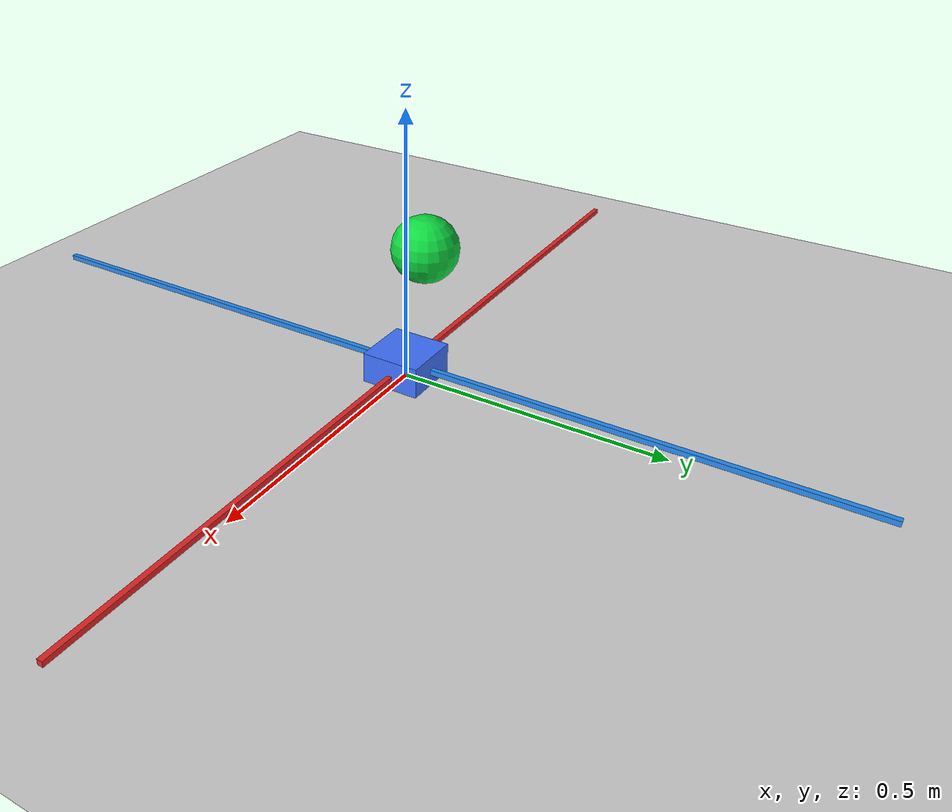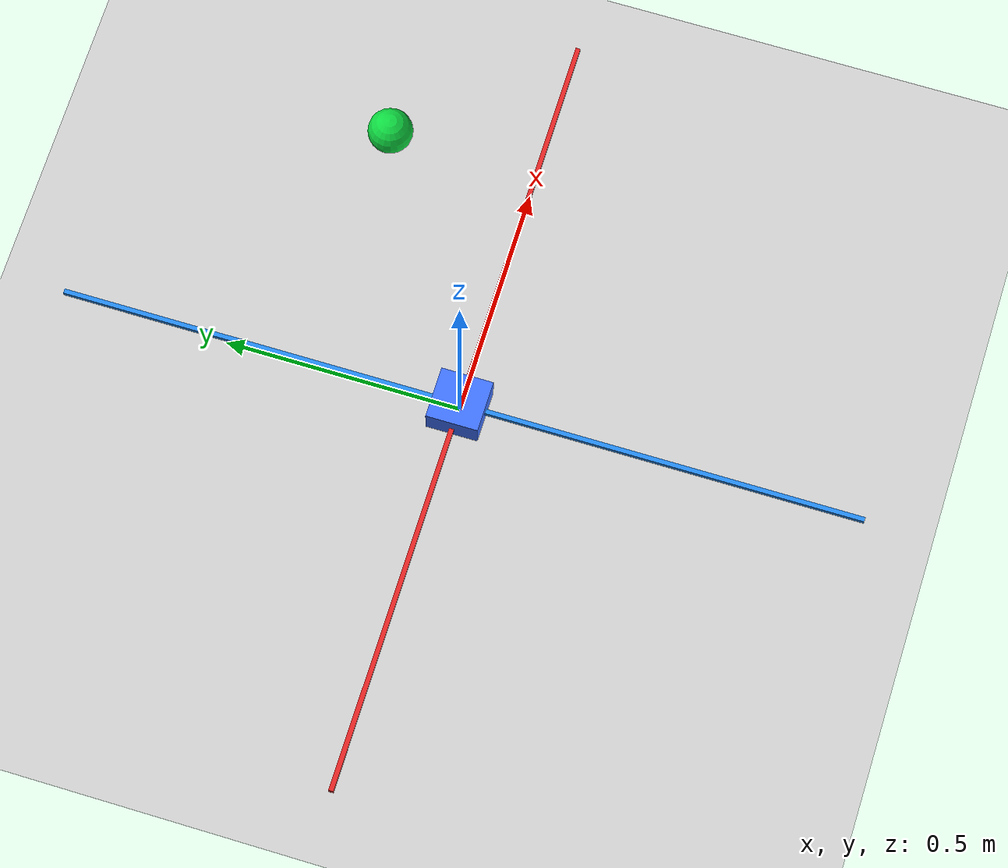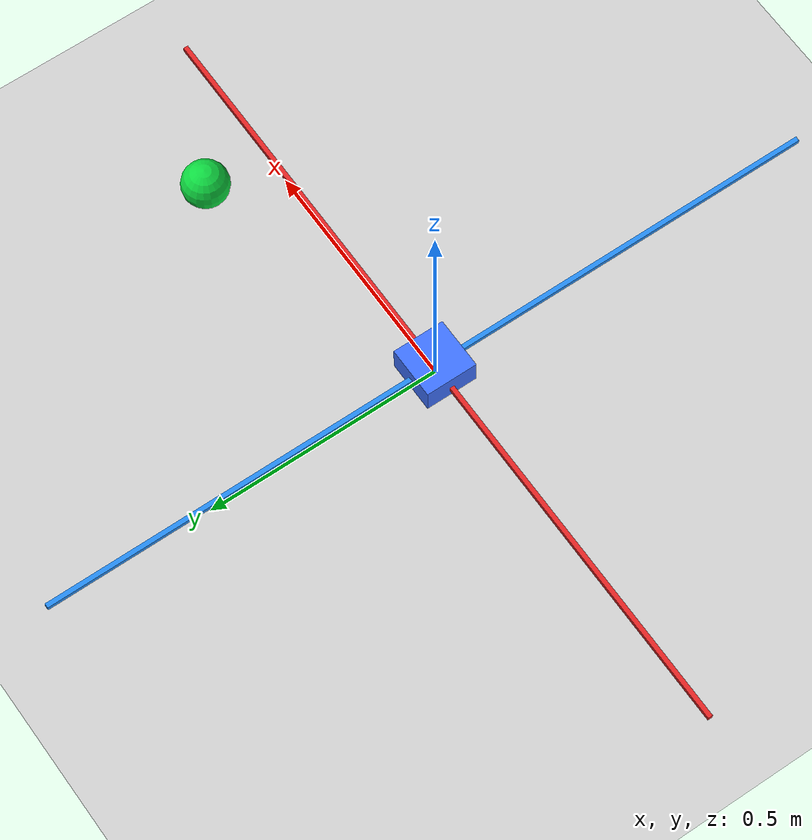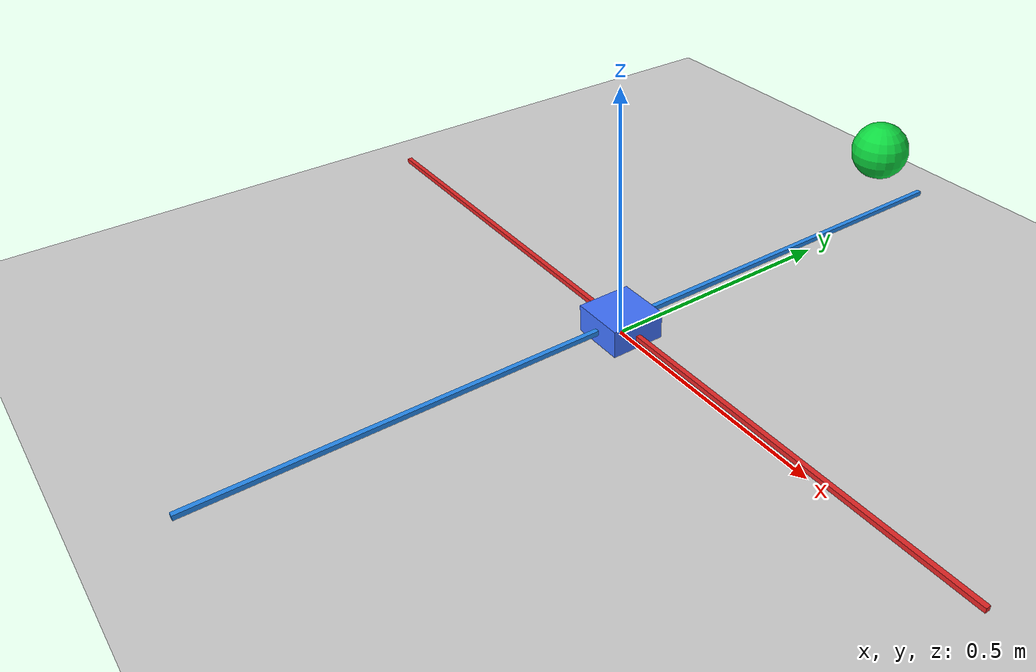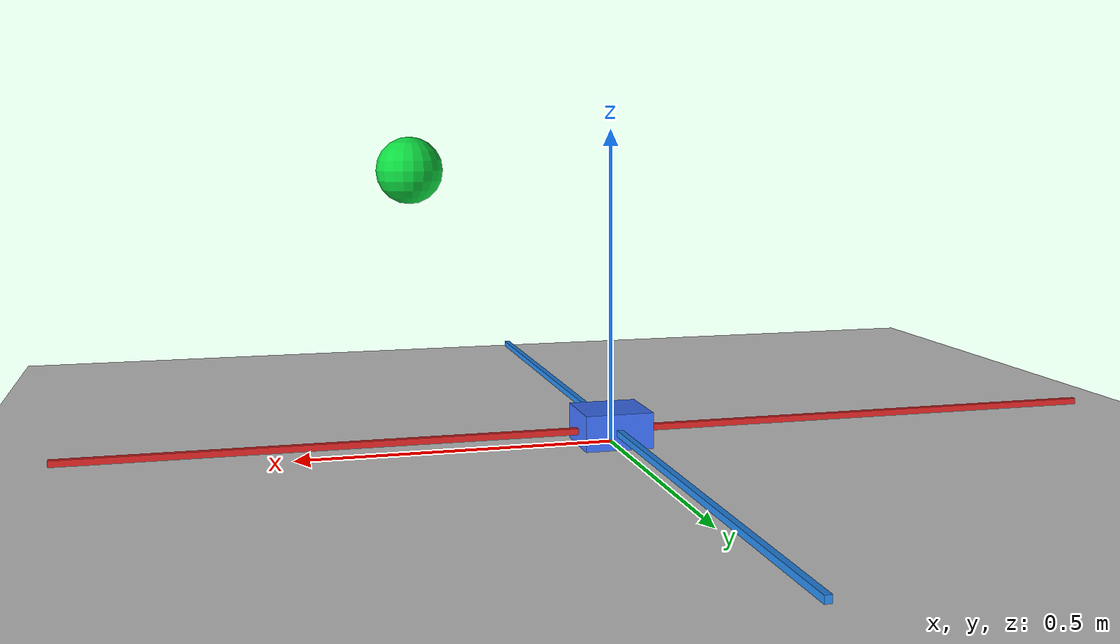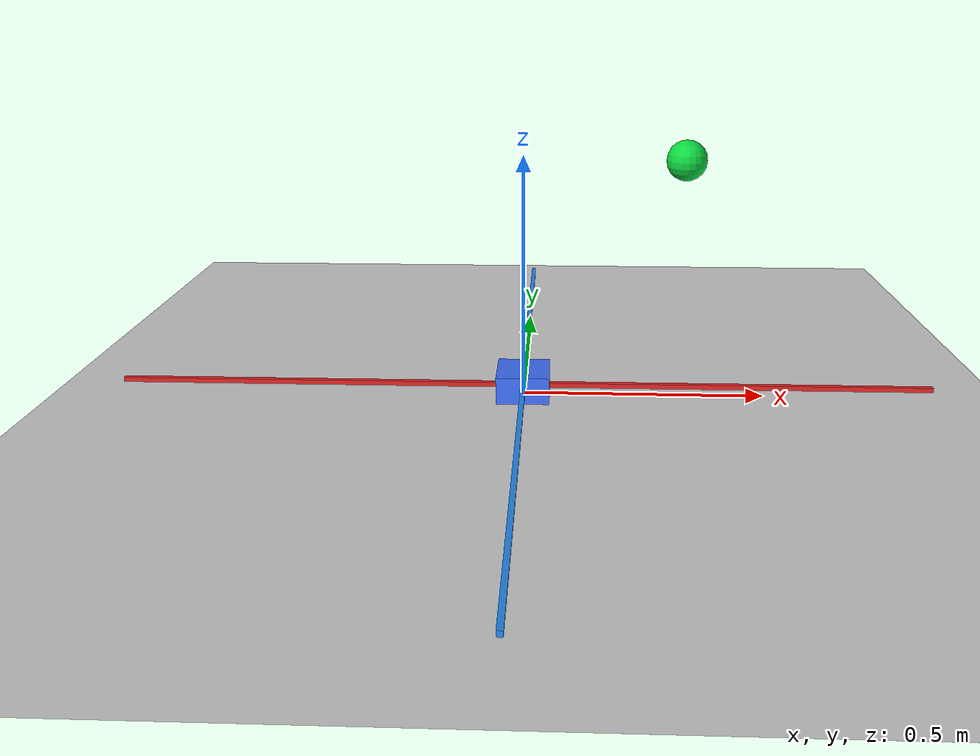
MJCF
<mujoco model="block_reach_3d">
  <compiler angle="degree"/>

  <option timestep="0.002" gravity="0 0 0"/>

  <default>
    <joint damping="0.08"/>
    <geom friction="1 0.005 0.0001"/>
  </default>

  <worldbody>
    <light pos="0 0 3" dir="0 0 -1"/>

    <geom
      name="ground"
      type="plane"
      size="1.4 1.4 0.1"
      rgba="0.82 0.82 0.82 1"/>

    <geom
      name="x_axis"
      type="box"
      pos="0 0 0.02"
      size="0.85 0.005 0.005"
      rgba="0.9 0.15 0.15 1"
      contype="0"
      conaffinity="0"/>

    <geom
      name="y_axis"
      type="box"
      pos="0 0 0.025"
      size="0.005 0.85 0.005"
      rgba="0.15 0.55 0.95 1"
      contype="0"
      conaffinity="0"/>

    <site
      name="target_site"
      type="sphere"
      pos="0.35 0.25 0.45"
      size="0.045"
      rgba="0.05 0.85 0.25 1"/>

    <body name="block">
      <joint
        name="block_slide_x"
        type="slide"
        axis="1 0 0"
        limited="true"
        range="-0.8 0.8"
        damping="0.35"/>

      <joint
        name="block_slide_y"
        type="slide"
        axis="0 1 0"
        limited="true"
        range="-0.8 0.8"
        damping="0.35"/>

      <joint
        name="block_slide_z"
        type="slide"
        axis="0 0 1"
        limited="true"
        range="0.12 0.85"
        damping="0.35"/>

      <geom
        name="block_geom"
        type="box"
        size="0.055 0.055 0.055"
        mass="0.5"
        rgba="0.25 0.45 1 1"/>

      <site
        name="block_site"
        type="sphere"
        pos="0 0 0"
        size="0.018"
        rgba="1 1 1 1"/>
    </body>
  </worldbody>

  <actuator>
    <motor
      name="block_motor_x"
      joint="block_slide_x"
      gear="1"
      ctrllimited="true"
      ctrlrange="-8 8"/>

    <motor
      name="block_motor_y"
      joint="block_slide_y"
      gear="1"
      ctrllimited="true"
      ctrlrange="-8 8"/>

    <motor
      name="block_motor_z"
      joint="block_slide_z"
      gear="1"
      ctrllimited="true"
      ctrlrange="-8 8"/>
  </actuator>
</mujoco>
